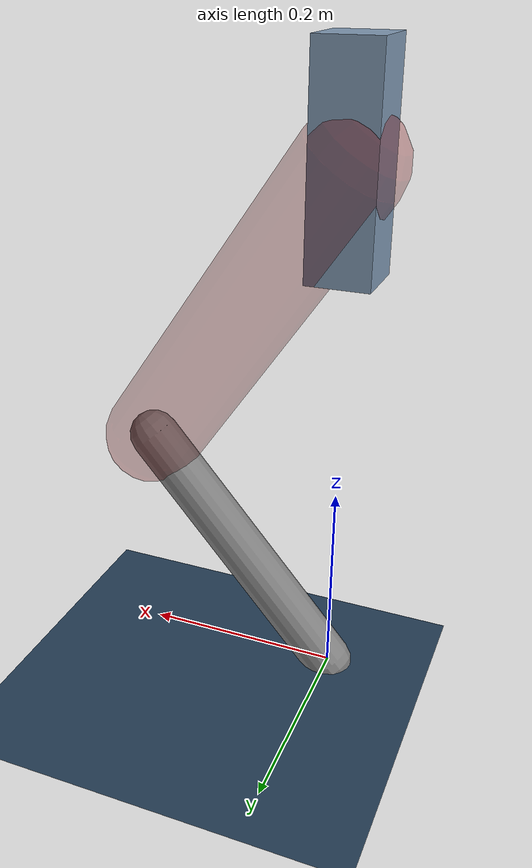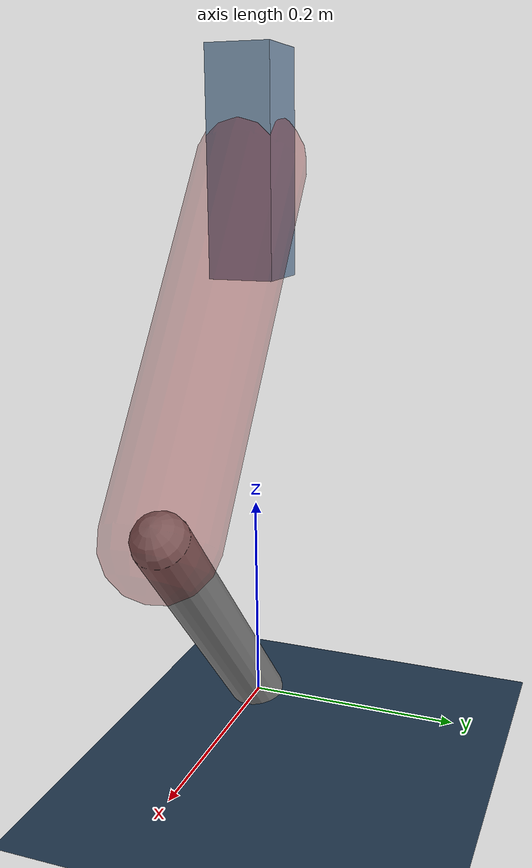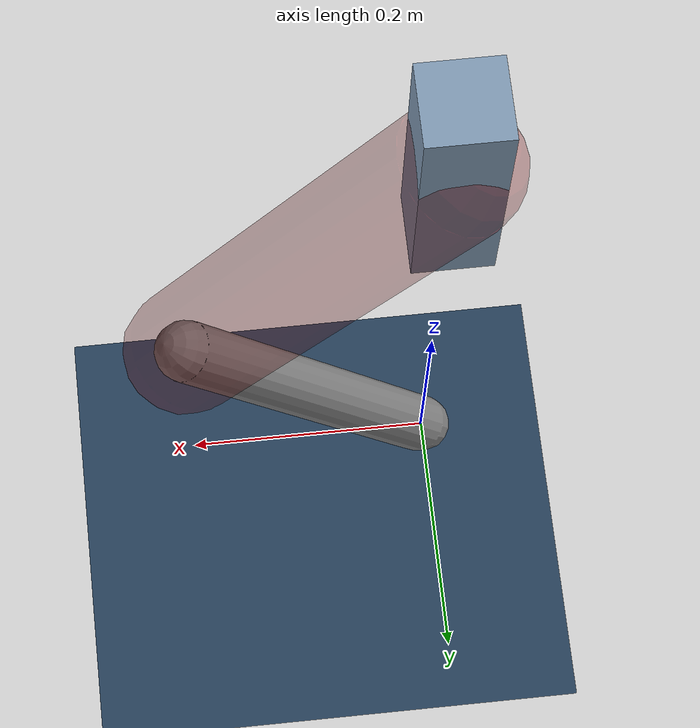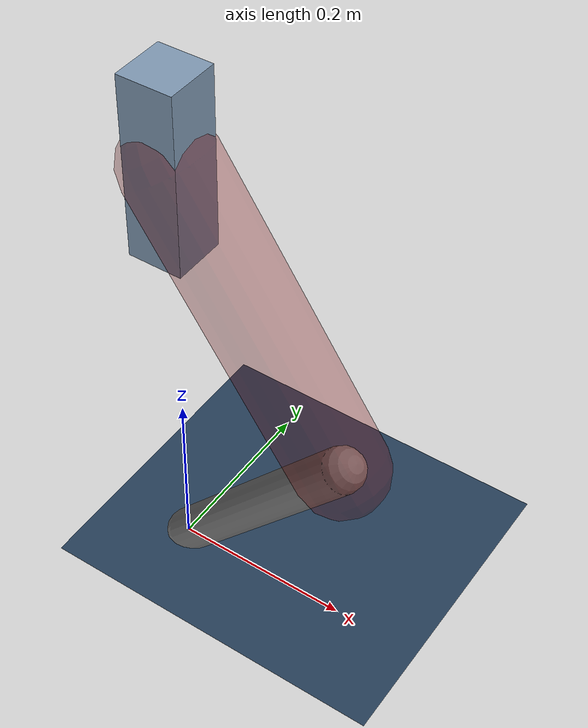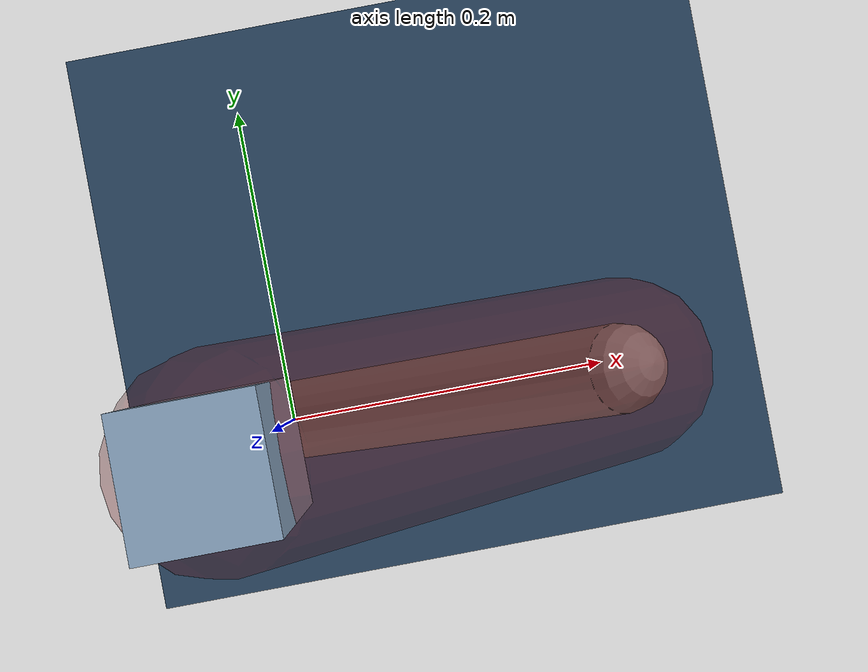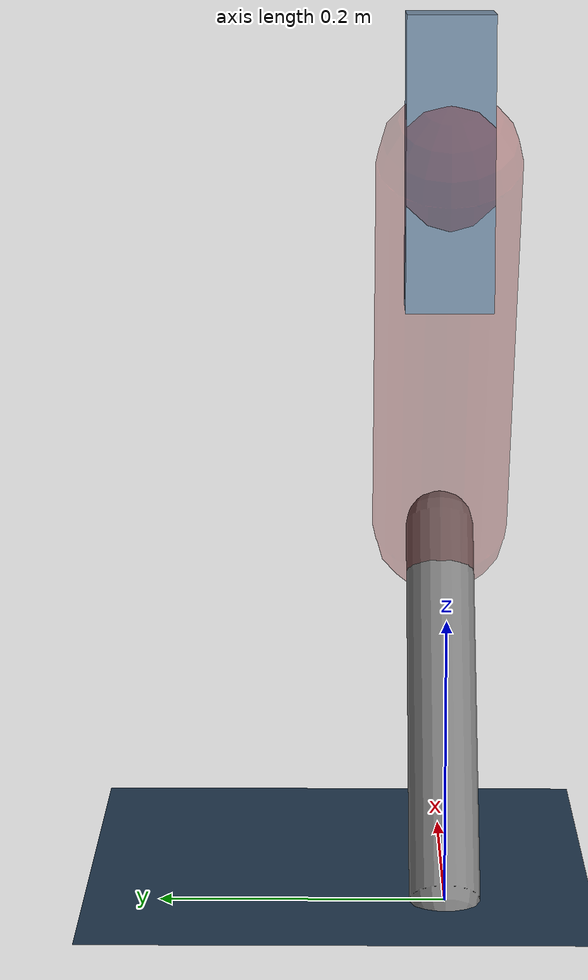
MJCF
<mujoco model="Hopper2D">
	<compiler inertiafromgeom="true" angle="radian" />
	<option timestep="0.001" integrator="implicit" cone="elliptic" solver="Newton" tolerance="1e-10" />

	<default>
		<geom contype="1" conaffinity="1" condim="3" friction="2 0.005 0.0001" solref="0.005 1" />
		<joint limited="true" damping="0.1" />
	</default>

	<asset>
		<texture name="skybox" type="skybox" builtin="gradient" rgb1=".4 .6 .8" rgb2="0 0 0" width="800" height="800" />
		<texture name="grid" type="2d" builtin="checker" rgb1=".1 .2 .3" rgb2=".2 .3 .4" width="300" height="300" mark="edge" markrgb=".2 .3 .4" />
		<material name="ground" texture="grid" texrepeat="1 1" texuniform="true" reflectance="0.1" />
		<material name="leg" rgba="0.5 0.6 0.7 1" />
	</asset>

	<worldbody>

		<geom name="floor" type="plane" size="5 5 0.25" material="ground" />

		<light directional="false" diffuse="0.8 0.8 0.8" specular="0.3 0.3 0.3" pos="0 0 2" dir="0 0 -1" />
		<light mode="targetbodycom" target="base" directional="false" diffuse="0.8 0.8 0.8" specular="0.3 0.3 0.3" pos="0 0 2" dir="0 0 -1" />

		<camera name="fixed" pos="0 -2 1" xyaxes="1 0 0 0 0 1" />
		<camera name="tracking" mode="trackcom" pos="0 -3 1" />

		<body name="root" pos="0 0 0.5186991628900319">
			<joint name="slide_x" type="slide" axis="1 0 0" range="-100 100" />
			<joint name="slide_z" type="slide" axis="0 0 1" range="0 10" />

			<body name="base" pos="0 0 0">
				<geom name="torso" type="box" size="0.03 0.03 0.1" mass="3.05" material="leg" />

				<body name="link1" pos="0 0 0" euler="0 0.970955082414124 0">
					<joint type="hinge" axis="0 -1 0" pos="0 0 0" name="hinge1" limited="true" range="-3.14 3.14" stiffness="0" damping="0.1" />
					<geom name="thigh" type="capsule" fromto="0 0 0 0.34841889900367956 0 0" size="0.05" rgba="0.5 0 0 0.3" mass="1.1222729172103028" />

					<body name="link2" pos="0.34841889900367956 0 0" euler="0 1.3049551036913898 0">
						<joint type="hinge" axis="0 -1 0" pos="0 0 0" name="hinge2" limited="true" range="-3.14 3.14" stiffness="0" damping="0.1" />
						<geom name="shank" type="capsule" fromto="0 0 0 0.30347202649709293 0 0" size="0.025" mass="0.48627762119767437" />

					</body>
				</body>
			</body>
		</body>
	</worldbody>

	<actuator>
		<motor name="torque1" joint="hinge1" ctrlrange="-134.48664277505773 134.48664277505773" ctrllimited="true" gear="1" />
		<motor name="torque2" joint="hinge2" ctrlrange="-40.83008171577938 40.83008171577938" ctrllimited="true" gear="1" />
	</actuator>
</mujoco>
